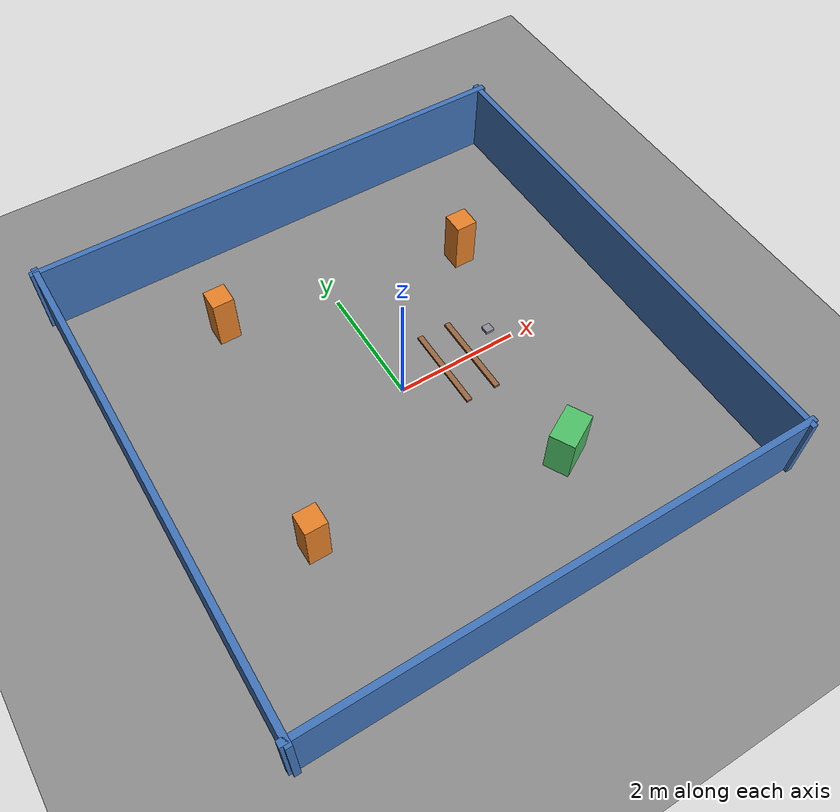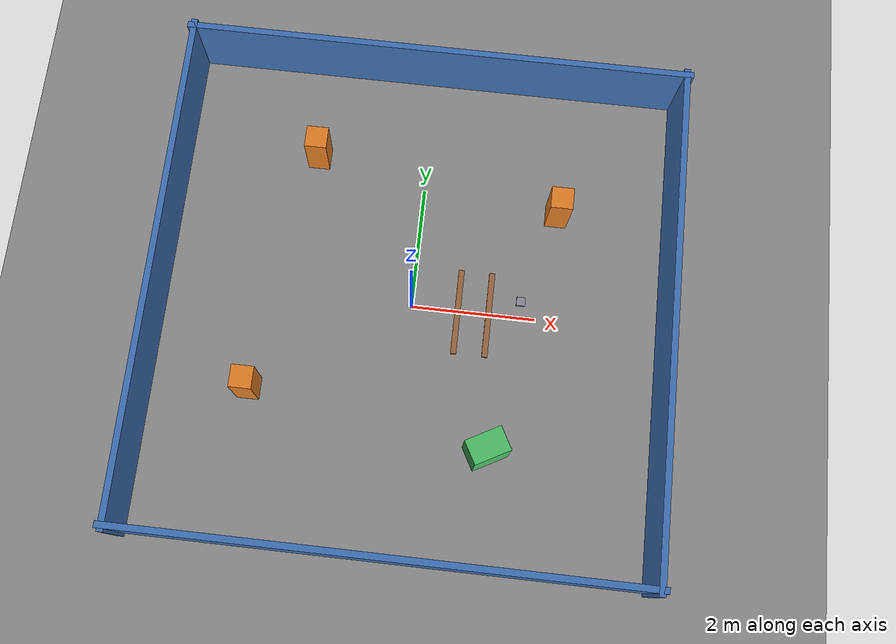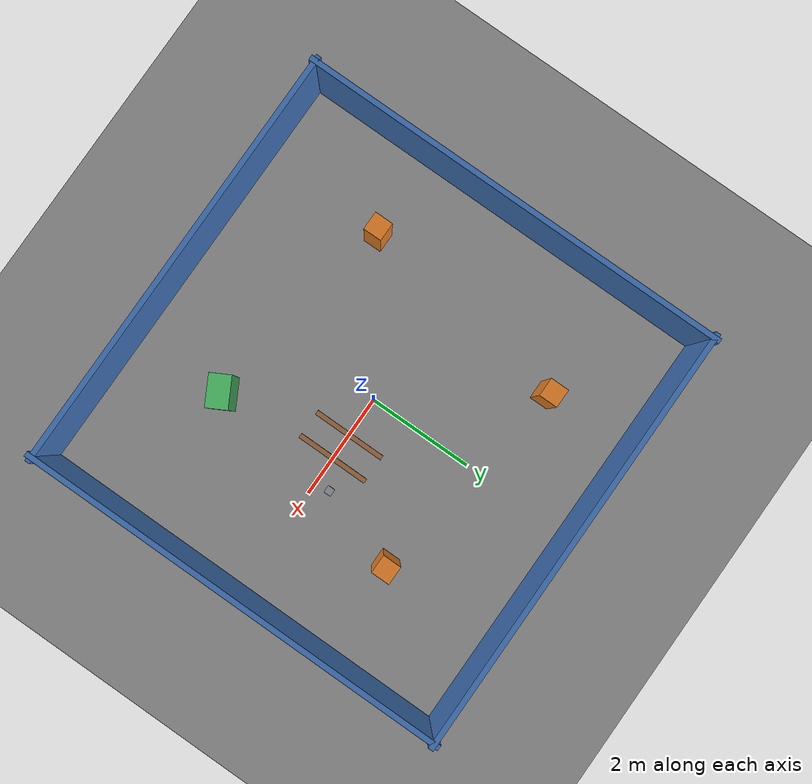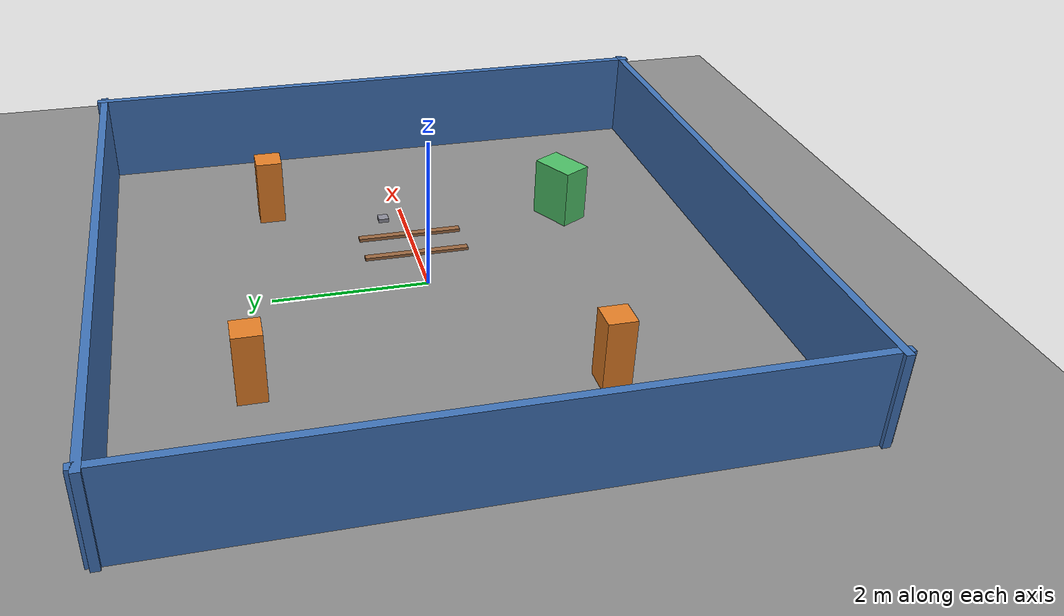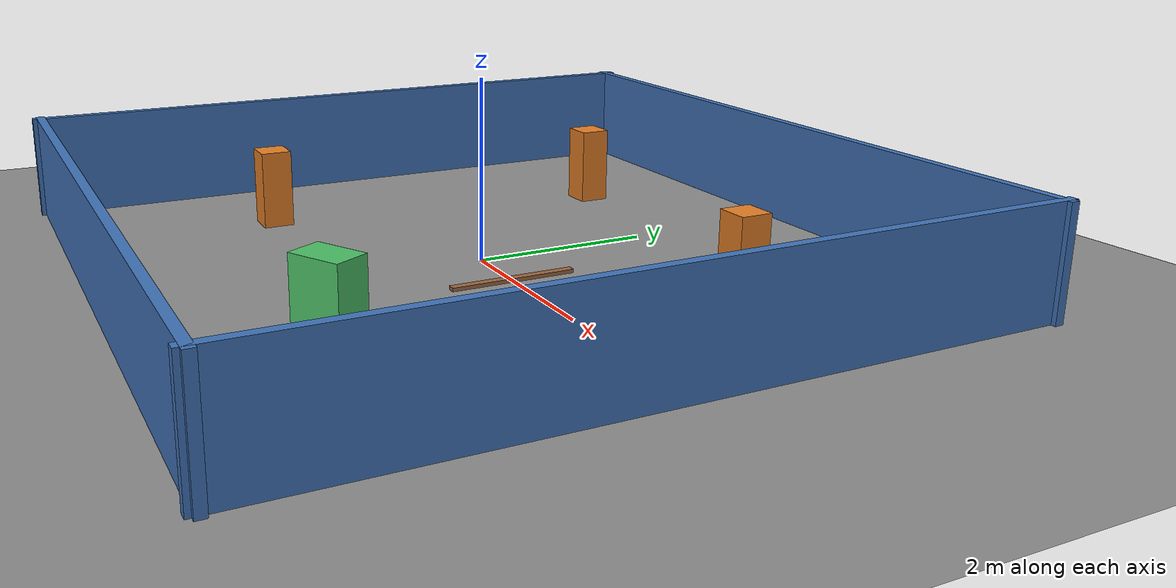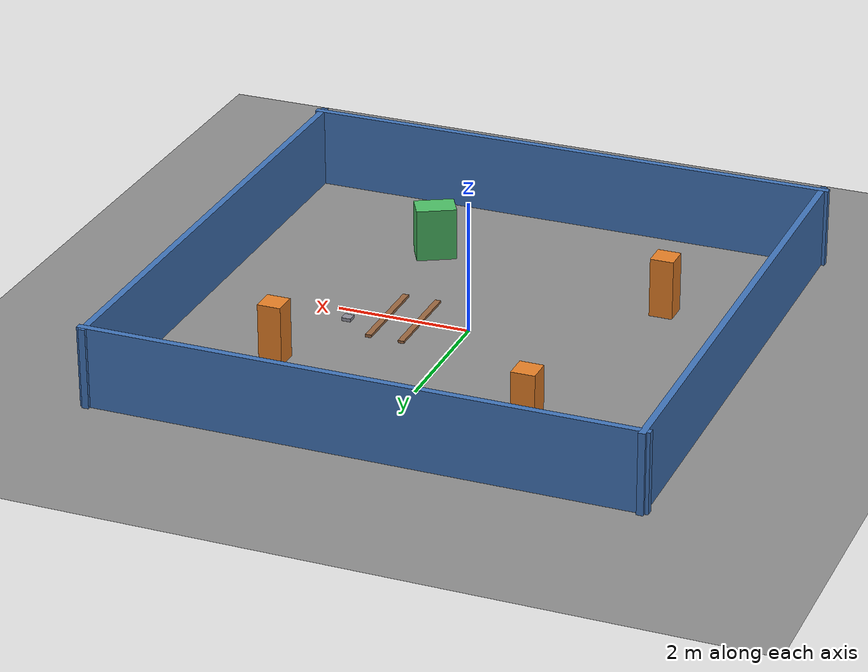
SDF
<?xml version="1.0"?>
<sdf version="1.10">
  <world name="arena">

    <physics name="1ms" type="ignored">
      <max_step_size>0.001</max_step_size>
      <real_time_factor>1.0</real_time_factor>
    </physics>
    <plugin filename="gz-sim-physics-system" name="gz::sim::systems::Physics"/>
    <plugin filename="gz-sim-user-commands-system" name="gz::sim::systems::UserCommands"/>
    <plugin filename="gz-sim-scene-broadcaster-system" name="gz::sim::systems::SceneBroadcaster"/>
    <plugin filename="gz-sim-sensors-system" name="gz::sim::systems::Sensors">
      <render_engine>ogre2</render_engine>
    </plugin>
    <plugin filename="gz-sim-imu-system" name="gz::sim::systems::Imu"/>
    <gravity>0 0 -9.81</gravity>

    <light type="directional" name="sun">
      <cast_shadows>true</cast_shadows>
      <pose>0 0 10 0 0 0</pose>
      <diffuse>0.9 0.9 0.9 1</diffuse>
      <specular>0.2 0.2 0.2 1</specular>
      <direction>-0.3 0.2 -0.9</direction>
    </light>

    <model name="ground_plane">
      <static>true</static>
      <link name="link">
        <collision name="collision">
          <geometry><plane><normal>0 0 1</normal><size>100 100</size></plane></geometry>
          <surface><friction><ode><mu>1.2</mu><mu2>1.2</mu2></ode></friction></surface>
        </collision>
        <visual name="visual">
          <geometry><plane><normal>0 0 1</normal><size>100 100</size></plane></geometry>
          <material><ambient>0.4 0.4 0.4 1</ambient><diffuse>0.55 0.55 0.55 1</diffuse></material>
        </visual>
      </link>
    </model>

    <!-- transverse ridge 1 (pitch) -->
    <model name="ridge_1">
      <static>true</static>
      <pose>0.75 0 0.020 0 0 0</pose>
      <link name="link">
        <collision name="c"><geometry><box><size>0.09 1.40 0.040</size></box></geometry>
          <surface><friction><ode><mu>1.2</mu><mu2>1.2</mu2></ode></friction></surface></collision>
        <visual name="v"><geometry><box><size>0.09 1.40 0.040</size></box></geometry>
          <material><ambient>0.5 0.35 0.2 1</ambient><diffuse>0.6 0.4 0.25 1</diffuse></material></visual>
      </link>
    </model>

    <!-- transverse ridge 2 (pitch, taller) -->
    <model name="ridge_2">
      <static>true</static>
      <pose>1.25 0 0.0225 0 0 0</pose>
      <link name="link">
        <collision name="c"><geometry><box><size>0.09 1.40 0.045</size></box></geometry>
          <surface><friction><ode><mu>1.2</mu><mu2>1.2</mu2></ode></friction></surface></collision>
        <visual name="v"><geometry><box><size>0.09 1.40 0.045</size></box></geometry>
          <material><ambient>0.5 0.35 0.2 1</ambient><diffuse>0.6 0.4 0.25 1</diffuse></material></visual>
      </link>
    </model>

    <!-- offset rock on the LEFT (induces body roll) -->
    <model name="rock_left">
      <static>true</static>
      <pose>1.75 0.28 0.025 0 0 0</pose>
      <link name="link">
        <collision name="c"><geometry><box><size>0.14 0.14 0.050</size></box></geometry>
          <surface><friction><ode><mu>1.2</mu><mu2>1.2</mu2></ode></friction></surface></collision>
        <visual name="v"><geometry><box><size>0.14 0.14 0.050</size></box></geometry>
          <material><ambient>0.45 0.45 0.48 1</ambient><diffuse>0.55 0.55 0.6 1</diffuse></material></visual>
      </link>
    </model>

    <model name="wall_north"><static>true</static><pose>0 4 0.6 0 0 0</pose>
      <link name="l"><collision name="c"><geometry><box><size>8.2 0.1 1.2</size></box></geometry></collision>
      <visual name="v"><geometry><box><size>8.2 0.1 1.2</size></box></geometry><material><ambient>0.15 0.28 0.45 1</ambient><diffuse>0.25 0.45 0.72 1</diffuse></material></visual></link></model>
    <model name="wall_south"><static>true</static><pose>0 -4 0.6 0 0 0</pose>
      <link name="l"><collision name="c"><geometry><box><size>8.2 0.1 1.2</size></box></geometry></collision>
      <visual name="v"><geometry><box><size>8.2 0.1 1.2</size></box></geometry><material><ambient>0.15 0.28 0.45 1</ambient><diffuse>0.25 0.45 0.72 1</diffuse></material></visual></link></model>
    <model name="wall_east"><static>true</static><pose>4 0 0.6 0 0 0</pose>
      <link name="l"><collision name="c"><geometry><box><size>0.1 8.2 1.2</size></box></geometry></collision>
      <visual name="v"><geometry><box><size>0.1 8.2 1.2</size></box></geometry><material><ambient>0.15 0.28 0.45 1</ambient><diffuse>0.25 0.45 0.72 1</diffuse></material></visual></link></model>
    <model name="wall_west"><static>true</static><pose>-4 0 0.6 0 0 0</pose>
      <link name="l"><collision name="c"><geometry><box><size>0.1 8.2 1.2</size></box></geometry></collision>
      <visual name="v"><geometry><box><size>0.1 8.2 1.2</size></box></geometry><material><ambient>0.15 0.28 0.45 1</ambient><diffuse>0.25 0.45 0.72 1</diffuse></material></visual></link></model>
    <model name="pillar_1"><static>true</static><pose>2.2 1.8 0.45 0 0 0</pose>
      <link name="l"><collision name="c"><geometry><box><size>0.35 0.35 0.9</size></box></geometry></collision>
      <visual name="v"><geometry><box><size>0.35 0.35 0.9</size></box></geometry><material><ambient>0.5 0.28 0.08 1</ambient><diffuse>0.9 0.5 0.15 1</diffuse></material></visual></link></model>
    <model name="pillar_2"><static>true</static><pose>-1.8 2.4 0.45 0 0 0</pose>
      <link name="l"><collision name="c"><geometry><box><size>0.35 0.35 0.9</size></box></geometry></collision>
      <visual name="v"><geometry><box><size>0.35 0.35 0.9</size></box></geometry><material><ambient>0.5 0.28 0.08 1</ambient><diffuse>0.9 0.5 0.15 1</diffuse></material></visual></link></model>
    <model name="pillar_3"><static>true</static><pose>-2.4 -1.6 0.45 0 0 0</pose>
      <link name="l"><collision name="c"><geometry><box><size>0.35 0.35 0.9</size></box></geometry></collision>
      <visual name="v"><geometry><box><size>0.35 0.35 0.9</size></box></geometry><material><ambient>0.5 0.28 0.08 1</ambient><diffuse>0.9 0.5 0.15 1</diffuse></material></visual></link></model>
    <model name="crate"><static>true</static><pose>1.4 -2.2 0.4 0 0 0.5</pose>
      <link name="l"><collision name="c"><geometry><box><size>0.6 0.4 0.8</size></box></geometry></collision>
      <visual name="v"><geometry><box><size>0.6 0.4 0.8</size></box></geometry><material><ambient>0.15 0.4 0.2 1</ambient><diffuse>0.3 0.75 0.4 1</diffuse></material></visual></link></model>
  </world>
</sdf>
